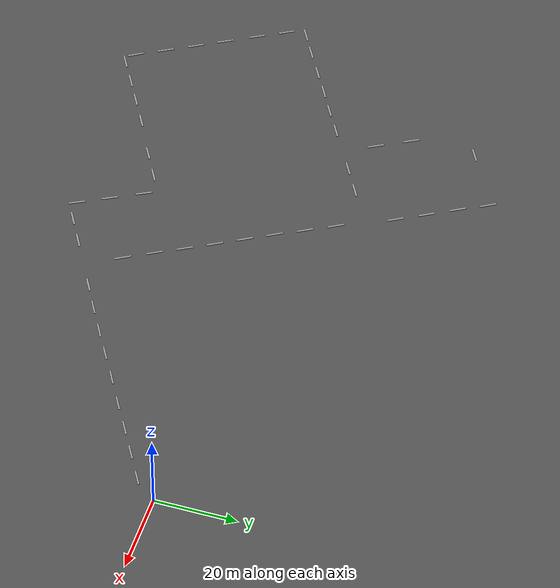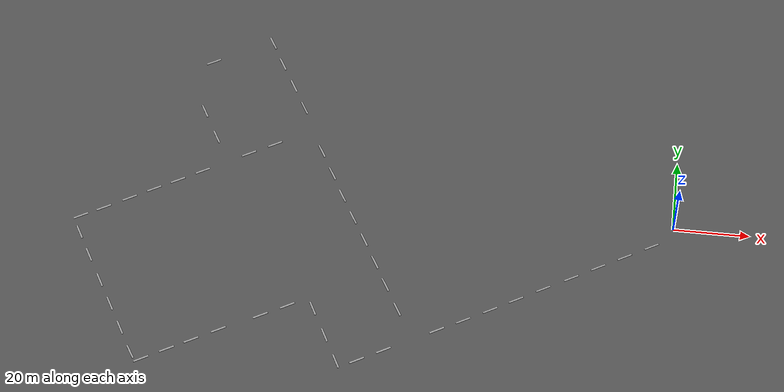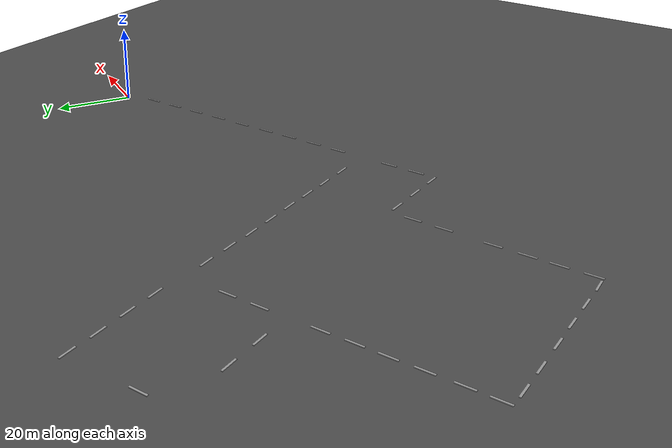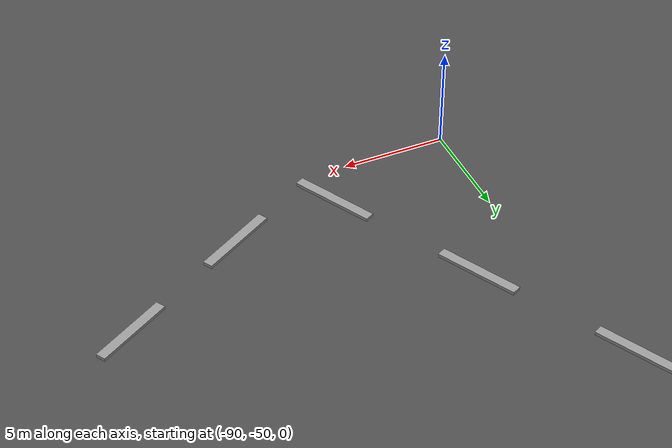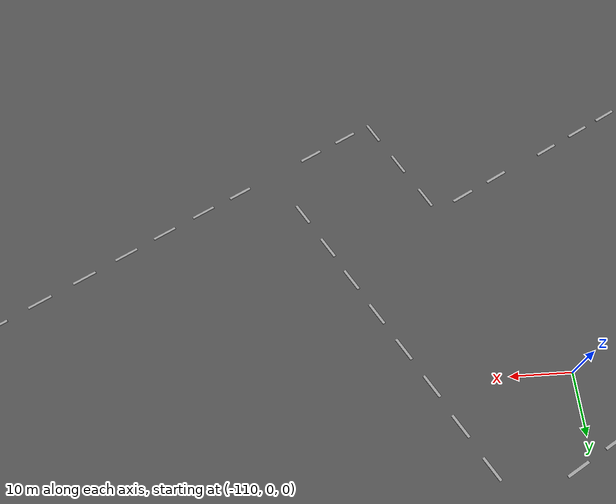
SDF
<sdf version="1.6">
 <world name="default">
  <light name="sun" type="directional">
   <pose>0 0 10 0 -0 0</pose>
   <diffuse>0.8 0.8 0.8 1</diffuse>
   <specular>0.2 0.2 0.2 1</specular>
   <attenuation>
    <range>1000</range>
    <constant>0.9</constant>
    <linear>0.01</linear>
    <quadratic>0.001</quadratic>
   </attenuation>
   <direction>-0.5 0.1 -0.9</direction>
  </light>
  <gravity>0 0 -9.8</gravity>
  <magnetic_field>6e-06 2.3e-05 -4.2e-05</magnetic_field>
  <atmosphere type="adiabatic"/>
  <physics name="default_physics" default="0" type="ode">
   <max_step_size>0.001</max_step_size>
   <real_time_factor>1</real_time_factor>
   <real_time_update_rate>1000</real_time_update_rate>
   <ode>
    <solver>
     <type>quick</type>
     <iters>100</iters>
     <sor>1.3</sor>
     <use_dynamic_moi_rescaling>0</use_dynamic_moi_rescaling>
    </solver>
    <constraints>
     <cfm>0</cfm>
     <erp>0.2</erp>
     <contact_max_correcting_vel>100</contact_max_correcting_vel>
     <contact_surface_layer>0.001</contact_surface_layer>
    </constraints>
   </ode>
  </physics>
  <scene><ambient>0.4 0.4 0.4 1</ambient><background>0.7 0.7 0.7 1</background><shadows>1</shadows></scene>
  <spherical_coordinates>
   <surface_model>EARTH_WGS84</surface_model>
   <latitude_deg>10.7755</latitude_deg>
   <longitude_deg>106.66</longitude_deg>
   <elevation>0.5</elevation>
   <heading_deg>90</heading_deg>
  </spherical_coordinates>
  <model name="asphalt_plane">
   <static>1</static>
   <link name="link">
    <collision name="collision"><geometry><box><size>300.002 399.998 0.1</size></box></geometry></collision>
    <visual name="visual">
     <cast_shadows>0</cast_shadows>
     <geometry><box><size>300.002 399.998 0.1</size></box></geometry>
     <material>
      <script>
       <uri>model://asphalt_plane/materials/scripts</uri>
       <uri>model://asphalt_plane/materials/textures</uri>
       <name>vrc/asphalt</name>
      </script>
     </material>
    </visual>
   </link>
   <pose>-96.2896 -6.77904 0 0 -0 0.505117</pose>
  </model>
  <model name="unit_box">
   <pose>-58.6797 -36.3177 0.134718 0 -2e-06 0.511104</pose>
   <link name="link">
    <inertial>
     <mass>1</mass>
     <inertia>
      <ixx>0.166667</ixx>
      <ixy>0</ixy>
      <ixz>0</ixz>
      <iyy>0.166667</iyy>
      <iyz>0</iyz>
      <izz>0.166667</izz>
     </inertia>
    </inertial>
    <collision name="collision"><geometry><box><size>4.10992 0.470748 0.169445</size></box></geometry></collision>
    <visual name="visual">
     <geometry><box><size>4.10992 0.470748 0.169445</size></box></geometry>
     <material>
      <script><name>Gazebo/Grey</name><uri>file://media/materials/scripts/gazebo.material</uri></script>
     </material>
    </visual>
   </link>
  </model>
  <model name="unit_box_clone">
   <pose>-52.2343 -32.8004 0.134718 0 -2e-06 0.511119</pose>
   <link name="link">
    <inertial>
     <mass>1</mass>
     <inertia>
      <ixx>0.166667</ixx>
      <ixy>0</ixy>
      <ixz>0</ixz>
      <iyy>0.166667</iyy>
      <iyz>0</iyz>
      <izz>0.166667</izz>
     </inertia>
    </inertial>
    <collision name="collision"><geometry><box><size>4.10992 0.423623 0.169445</size></box></geometry></collision>
    <visual name="visual">
     <geometry><box><size>4.10992 0.423623 0.169445</size></box></geometry>
     <material>
      <script><name>Gazebo/Grey</name><uri>file://media/materials/scripts/gazebo.material</uri></script>
     </material>
    </visual>
   </link>
  </model>
  <model name="unit_box_clone_clone">
   <pose>-45.605 -29.0458 0.134718 0 -2e-06 0.511109</pose>
   <link name="link">
    <inertial>
     <mass>1</mass>
     <inertia>
      <ixx>0.166667</ixx>
      <ixy>0</ixy>
      <ixz>0</ixz>
      <iyy>0.166667</iyy>
      <iyz>0</iyz>
      <izz>0.166667</izz>
     </inertia>
    </inertial>
    <collision name="collision"><geometry><box><size>4.10992 0.423624 0.169445</size></box></geometry></collision>
    <visual name="visual">
     <geometry><box><size>4.10992 0.423624 0.169445</size></box></geometry>
     <material>
      <script><name>Gazebo/Grey</name><uri>file://media/materials/scripts/gazebo.material</uri></script>
     </material>
    </visual>
   </link>
  </model>
  <model name="unit_box_clone_clone_0">
   <pose>-39.235 -25.3333 0.134718 0 -2e-06 0.511111</pose>
   <link name="link">
    <inertial>
     <mass>1</mass>
     <inertia>
      <ixx>0.166667</ixx>
      <ixy>0</ixy>
      <ixz>0</ixz>
      <iyy>0.166667</iyy>
      <iyz>0</iyz>
      <izz>0.166667</izz>
     </inertia>
    </inertial>
    <collision name="collision"><geometry><box><size>4.10992 0.423624 0.169445</size></box></geometry></collision>
    <visual name="visual">
     <geometry><box><size>4.10992 0.423624 0.169445</size></box></geometry>
     <material>
      <script><name>Gazebo/Grey</name><uri>file://media/materials/scripts/gazebo.material</uri></script>
     </material>
    </visual>
   </link>
  </model>
  <model name="unit_box_clone_clone_1">
   <pose>-32.4914 -21.3832 0.134718 -0 -2e-06 0.511112</pose>
   <link name="link">
    <inertial>
     <mass>1</mass>
     <inertia>
      <ixx>0.166667</ixx>
      <ixy>0</ixy>
      <ixz>0</ixz>
      <iyy>0.166667</iyy>
      <iyz>0</iyz>
      <izz>0.166667</izz>
     </inertia>
    </inertial>
    <collision name="collision"><geometry><box><size>4.10992 0.423624 0.169445</size></box></geometry></collision>
    <visual name="visual">
     <geometry><box><size>4.10992 0.423624 0.169445</size></box></geometry>
     <material>
      <script><name>Gazebo/Grey</name><uri>file://media/materials/scripts/gazebo.material</uri></script>
     </material>
    </visual>
   </link>
  </model>
  <model name="unit_box_clone_clone_2">
   <pose>-25.515 -17.4445 0.134718 0 -2e-06 0.511114</pose>
   <link name="link">
    <inertial>
     <mass>1</mass>
     <inertia>
      <ixx>0.166667</ixx>
      <ixy>0</ixy>
      <ixz>0</ixz>
      <iyy>0.166667</iyy>
      <iyz>0</iyz>
      <izz>0.166667</izz>
     </inertia>
    </inertial>
    <collision name="collision"><geometry><box><size>4.10992 0.423624 0.169445</size></box></geometry></collision>
    <visual name="visual">
     <geometry><box><size>4.10992 0.423624 0.169445</size></box></geometry>
     <material>
      <script><name>Gazebo/Grey</name><uri>file://media/materials/scripts/gazebo.material</uri></script>
     </material>
    </visual>
   </link>
  </model>
  <model name="unit_box_clone_clone_3">
   <pose>-18.7815 -13.4968 0.134718 -0 -2e-06 0.511115</pose>
   <link name="link">
    <inertial>
     <mass>1</mass>
     <inertia>
      <ixx>0.166667</ixx>
      <ixy>0</ixy>
      <ixz>0</ixz>
      <iyy>0.166667</iyy>
      <iyz>0</iyz>
      <izz>0.166667</izz>
     </inertia>
    </inertial>
    <collision name="collision"><geometry><box><size>4.10992 0.423624 0.169445</size></box></geometry></collision>
    <visual name="visual">
     <geometry><box><size>4.10992 0.423624 0.169445</size></box></geometry>
     <material>
      <script><name>Gazebo/Grey</name><uri>file://media/materials/scripts/gazebo.material</uri></script>
     </material>
    </visual>
   </link>
  </model>
  <model name="unit_box_clone_clone_4">
   <pose>-12.1267 -9.70208 0.134718 -0 -2e-06 0.511117</pose>
   <link name="link">
    <inertial>
     <mass>1</mass>
     <inertia>
      <ixx>0.166667</ixx>
      <ixy>0</ixy>
      <ixz>0</ixz>
      <iyy>0.166667</iyy>
      <iyz>0</iyz>
      <izz>0.166667</izz>
     </inertia>
    </inertial>
    <collision name="collision"><geometry><box><size>4.10992 0.423624 0.169445</size></box></geometry></collision>
    <visual name="visual">
     <geometry><box><size>4.10992 0.423624 0.169445</size></box></geometry>
     <material>
      <script><name>Gazebo/Grey</name><uri>file://media/materials/scripts/gazebo.material</uri></script>
     </material>
    </visual>
   </link>
  </model>
  <model name="unit_box_clone_clone_5">
   <pose>-5.35605 -5.84935 0.134718 -0 -2e-06 0.511118</pose>
   <link name="link">
    <inertial>
     <mass>1</mass>
     <inertia>
      <ixx>0.166667</ixx>
      <ixy>0</ixy>
      <ixz>0</ixz>
      <iyy>0.166667</iyy>
      <iyz>0</iyz>
      <izz>0.166667</izz>
     </inertia>
    </inertial>
    <collision name="collision"><geometry><box><size>4.10992 0.423624 0.169445</size></box></geometry></collision>
    <visual name="visual">
     <geometry><box><size>4.10992 0.423624 0.169445</size></box></geometry>
     <material>
      <script><name>Gazebo/Grey</name><uri>file://media/materials/scripts/gazebo.material</uri></script>
     </material>
    </visual>
   </link>
  </model>
  <model name="unit_box_clone_0">
   <pose>-71.6412 -43.4656 0.134718 0 -2e-06 0.511099</pose>
   <link name="link">
    <inertial>
     <mass>1</mass>
     <inertia>
      <ixx>0.166667</ixx>
      <ixy>0</ixy>
      <ixz>0</ixz>
      <iyy>0.166667</iyy>
      <iyz>0</iyz>
      <izz>0.166667</izz>
     </inertia>
    </inertial>
    <collision name="collision"><geometry><box><size>4.10992 0.470749 0.169445</size></box></geometry></collision>
    <visual name="visual">
     <geometry><box><size>4.10992 0.470749 0.169445</size></box></geometry>
     <material>
      <script><name>Gazebo/Grey</name><uri>file://media/materials/scripts/gazebo.material</uri></script>
     </material>
    </visual>
   </link>
  </model>
  <model name="unit_box_clone_1">
   <pose>-78.1131 -47.0767 0.134718 0 -2e-06 0.511101</pose>
   <link name="link">
    <inertial>
     <mass>1</mass>
     <inertia>
      <ixx>0.166667</ixx>
      <ixy>0</ixy>
      <ixz>0</ixz>
      <iyy>0.166667</iyy>
      <iyz>0</iyz>
      <izz>0.166667</izz>
     </inertia>
    </inertial>
    <collision name="collision"><geometry><box><size>4.10992 0.470749 0.169445</size></box></geometry></collision>
    <visual name="visual">
     <geometry><box><size>4.10992 0.470749 0.169445</size></box></geometry>
     <material>
      <script><name>Gazebo/Grey</name><uri>file://media/materials/scripts/gazebo.material</uri></script>
     </material>
    </visual>
   </link>
  </model>
  <model name="unit_box_clone_1_clone">
   <pose>-83.4388 -47.8919 0.134718 0 2e-06 2.05266</pose>
   <link name="link">
    <inertial>
     <mass>1</mass>
     <inertia>
      <ixx>0.166667</ixx>
      <ixy>0</ixy>
      <ixz>0</ixz>
      <iyy>0.166667</iyy>
      <iyz>0</iyz>
      <izz>0.166667</izz>
     </inertia>
    </inertial>
    <collision name="collision"><geometry><box><size>4.10992 0.470749 0.169445</size></box></geometry></collision>
    <visual name="visual">
     <geometry><box><size>4.10992 0.470749 0.169445</size></box></geometry>
     <material>
      <script><name>Gazebo/Grey</name><uri>file://media/materials/scripts/gazebo.material</uri></script>
     </material>
    </visual>
   </link>
  </model>
  <model name="unit_box_clone_1_clone_clone">
   <pose>-87.2547 -40.7782 0.134718 0 2e-06 2.05266</pose>
   <link name="link">
    <inertial>
     <mass>1</mass>
     <inertia>
      <ixx>0.166667</ixx>
      <ixy>0</ixy>
      <ixz>0</ixz>
      <iyy>0.166667</iyy>
      <iyz>0</iyz>
      <izz>0.166667</izz>
     </inertia>
    </inertial>
    <collision name="collision"><geometry><box><size>4.10992 0.470749 0.169445</size></box></geometry></collision>
    <visual name="visual">
     <geometry><box><size>4.10992 0.470749 0.169445</size></box></geometry>
     <material>
      <script><name>Gazebo/Grey</name><uri>file://media/materials/scripts/gazebo.material</uri></script>
     </material>
    </visual>
   </link>
  </model>
  <model name="unit_box_clone_1_clone_clone_0">
   <pose>-91.1866 -33.4937 0.134718 0 2e-06 2.05267</pose>
   <link name="link">
    <inertial>
     <mass>1</mass>
     <inertia>
      <ixx>0.166667</ixx>
      <ixy>0</ixy>
      <ixz>0</ixz>
      <iyy>0.166667</iyy>
      <iyz>0</iyz>
      <izz>0.166667</izz>
     </inertia>
    </inertial>
    <collision name="collision"><geometry><box><size>4.10992 0.470749 0.169445</size></box></geometry></collision>
    <visual name="visual">
     <geometry><box><size>4.10992 0.470749 0.169445</size></box></geometry>
     <material>
      <script><name>Gazebo/Grey</name><uri>file://media/materials/scripts/gazebo.material</uri></script>
     </material>
    </visual>
   </link>
  </model>
  <model name="unit_box_clone_1_clone_0">
   <pose>-97.8327 -33.3433 0.134718 0 -2e-06 0.511101</pose>
   <link name="link">
    <inertial>
     <mass>1</mass>
     <inertia>
      <ixx>0.166667</ixx>
      <ixy>0</ixy>
      <ixz>0</ixz>
      <iyy>0.166667</iyy>
      <iyz>0</iyz>
      <izz>0.166667</izz>
     </inertia>
    </inertial>
    <collision name="collision"><geometry><box><size>4.10992 0.470749 0.169445</size></box></geometry></collision>
    <visual name="visual">
     <geometry><box><size>4.10992 0.470749 0.169445</size></box></geometry>
     <material>
      <script><name>Gazebo/Grey</name><uri>file://media/materials/scripts/gazebo.material</uri></script>
     </material>
    </visual>
   </link>
  </model>
  <model name="unit_box_clone_1_clone_1">
   <pose>-104.358 -36.9164 0.134718 0 -2e-06 0.511103</pose>
   <link name="link">
    <inertial>
     <mass>1</mass>
     <inertia>
      <ixx>0.166667</ixx>
      <ixy>0</ixy>
      <ixz>0</ixz>
      <iyy>0.166667</iyy>
      <iyz>0</iyz>
      <izz>0.166667</izz>
     </inertia>
    </inertial>
    <collision name="collision"><geometry><box><size>4.10992 0.470749 0.169445</size></box></geometry></collision>
    <visual name="visual">
     <geometry><box><size>4.10992 0.470749 0.169445</size></box></geometry>
     <material>
      <script><name>Gazebo/Grey</name><uri>file://media/materials/scripts/gazebo.material</uri></script>
     </material>
    </visual>
   </link>
  </model>
  <model name="unit_box_clone_1_clone_1_clone">
   <pose>-114.497 -42.1521 0.134718 0 -2e-06 0.511103</pose>
   <link name="link">
    <inertial>
     <mass>1</mass>
     <inertia>
      <ixx>0.166667</ixx>
      <ixy>0</ixy>
      <ixz>0</ixz>
      <iyy>0.166667</iyy>
      <iyz>0</iyz>
      <izz>0.166667</izz>
     </inertia>
    </inertial>
    <collision name="collision"><geometry><box><size>4.10992 0.470749 0.169445</size></box></geometry></collision>
    <visual name="visual">
     <geometry><box><size>4.10992 0.470749 0.169445</size></box></geometry>
     <material>
      <script><name>Gazebo/Grey</name><uri>file://media/materials/scripts/gazebo.material</uri></script>
     </material>
    </visual>
   </link>
  </model>
  <model name="unit_box_clone_1_clone_1_clone_0">
   <pose>-121.043 -45.8424 0.134718 -0 -2e-06 0.511106</pose>
   <link name="link">
    <inertial>
     <mass>1</mass>
     <inertia>
      <ixx>0.166667</ixx>
      <ixy>0</ixy>
      <ixz>0</ixz>
      <iyy>0.166667</iyy>
      <iyz>0</iyz>
      <izz>0.166667</izz>
     </inertia>
    </inertial>
    <collision name="collision"><geometry><box><size>4.10992 0.470749 0.169445</size></box></geometry></collision>
    <visual name="visual">
     <geometry><box><size>4.10992 0.470749 0.169445</size></box></geometry>
     <material>
      <script><name>Gazebo/Grey</name><uri>file://media/materials/scripts/gazebo.material</uri></script>
     </material>
    </visual>
   </link>
  </model>
  <model name="unit_box_clone_1_clone_1_clone_1">
   <pose>-126.85 -49.0943 0.134718 -0 -2e-06 0.511107</pose>
   <link name="link">
    <inertial>
     <mass>1</mass>
     <inertia>
      <ixx>0.166667</ixx>
      <ixy>0</ixy>
      <ixz>0</ixz>
      <iyy>0.166667</iyy>
      <iyz>0</iyz>
      <izz>0.166667</izz>
     </inertia>
    </inertial>
    <collision name="collision"><geometry><box><size>4.10992 0.470749 0.169445</size></box></geometry></collision>
    <visual name="visual">
     <geometry><box><size>4.10992 0.470749 0.169445</size></box></geometry>
     <material>
      <script><name>Gazebo/Grey</name><uri>file://media/materials/scripts/gazebo.material</uri></script>
     </material>
    </visual>
   </link>
  </model>
  <model name="unit_box_clone_1_clone_clone_1">
   <pose>-155.018 -17.5805 0.134718 -0 2e-06 2.08646</pose>
   <link name="link">
    <inertial>
     <mass>1</mass>
     <inertia>
      <ixx>0.166667</ixx>
      <ixy>0</ixy>
      <ixz>0</ixz>
      <iyy>0.166667</iyy>
      <iyz>0</iyz>
      <izz>0.166667</izz>
     </inertia>
    </inertial>
    <collision name="collision"><geometry><box><size>4.10992 0.470749 0.169445</size></box></geometry></collision>
    <visual name="visual">
     <geometry><box><size>4.10992 0.470749 0.169445</size></box></geometry>
     <material>
      <script><name>Gazebo/Grey</name><uri>file://media/materials/scripts/gazebo.material</uri></script>
     </material>
    </visual>
   </link>
  </model>
  <model name="unit_box_clone_1_clone_clone_2">
   <pose>-151.376 -24.0659 0.134718 -0 2e-06 2.08813</pose>
   <link name="link">
    <inertial>
     <mass>1</mass>
     <inertia>
      <ixx>0.166667</ixx>
      <ixy>0</ixy>
      <ixz>0</ixz>
      <iyy>0.166667</iyy>
      <iyz>0</iyz>
      <izz>0.166667</izz>
     </inertia>
    </inertial>
    <collision name="collision"><geometry><box><size>4.10992 0.470749 0.169445</size></box></geometry></collision>
    <visual name="visual">
     <geometry><box><size>4.10992 0.470749 0.169445</size></box></geometry>
     <material>
      <script><name>Gazebo/Grey</name><uri>file://media/materials/scripts/gazebo.material</uri></script>
     </material>
    </visual>
   </link>
  </model>
  <model name="unit_box_clone_1_clone_clone_1_clone_0">
   <pose>-143.528 -37.7174 0.134718 -0 2e-06 2.08646</pose>
   <link name="link">
    <inertial>
     <mass>1</mass>
     <inertia>
      <ixx>0.166667</ixx>
      <ixy>0</ixy>
      <ixz>0</ixz>
      <iyy>0.166667</iyy>
      <iyz>0</iyz>
      <izz>0.166667</izz>
     </inertia>
    </inertial>
    <collision name="collision"><geometry><box><size>4.10992 0.470749 0.169445</size></box></geometry></collision>
    <visual name="visual">
     <geometry><box><size>4.10992 0.470749 0.169445</size></box></geometry>
     <material>
      <script><name>Gazebo/Grey</name><uri>file://media/materials/scripts/gazebo.material</uri></script>
     </material>
    </visual>
   </link>
  </model>
  <model name="unit_box_clone_1_clone_clone_1_clone_1">
   <pose>-139.771 -44.3299 0.134718 -0 2e-06 2.08646</pose>
   <link name="link">
    <inertial>
     <mass>1</mass>
     <inertia>
      <ixx>0.166667</ixx>
      <ixy>0</ixy>
      <ixz>0</ixz>
      <iyy>0.166667</iyy>
      <iyz>0</iyz>
      <izz>0.166667</izz>
     </inertia>
    </inertial>
    <collision name="collision"><geometry><box><size>4.10992 0.470749 0.169445</size></box></geometry></collision>
    <visual name="visual">
     <geometry><box><size>4.10992 0.470749 0.169445</size></box></geometry>
     <material>
      <script><name>Gazebo/Grey</name><uri>file://media/materials/scripts/gazebo.material</uri></script>
     </material>
    </visual>
   </link>
  </model>
  <model name="unit_box_clone_1_clone_clone_1_clone_2">
   <pose>-136.03 -50.9037 0.134717 -0 -2e-06 2.12666</pose>
   <link name="link">
    <inertial>
     <mass>1</mass>
     <inertia>
      <ixx>0.166667</ixx>
      <ixy>0</ixy>
      <ixz>0</ixz>
      <iyy>0.166667</iyy>
      <iyz>0</iyz>
      <izz>0.166667</izz>
     </inertia>
    </inertial>
    <collision name="collision"><geometry><box><size>4.10992 0.470749 0.169445</size></box></geometry></collision>
    <visual name="visual">
     <geometry><box><size>4.10992 0.470749 0.169445</size></box></geometry>
     <material>
      <script><name>Gazebo/Grey</name><uri>file://media/materials/scripts/gazebo.material</uri></script>
     </material>
    </visual>
   </link>
  </model>
  <model name="unit_box_clone_1_clone_1_clone_1_clone">
   <pose>-132.933 -52.5797 0.134718 -0 -2e-06 0.511106</pose>
   <link name="link">
    <inertial>
     <mass>1</mass>
     <inertia>
      <ixx>0.166667</ixx>
      <ixy>0</ixy>
      <ixz>0</ixz>
      <iyy>0.166667</iyy>
      <iyz>0</iyz>
      <izz>0.166667</izz>
     </inertia>
    </inertial>
    <collision name="collision"><geometry><box><size>4.10992 0.470749 0.169445</size></box></geometry></collision>
    <visual name="visual">
     <geometry><box><size>4.10992 0.470749 0.169445</size></box></geometry>
     <material>
      <script><name>Gazebo/Grey</name><uri>file://media/materials/scripts/gazebo.material</uri></script>
     </material>
    </visual>
   </link>
  </model>
  <model name="unit_box_clone_1_clone_1_clone_0_clone">
   <pose>-137.636 -2.42595 0.134718 -0 -2e-06 0.511108</pose>
   <link name="link">
    <inertial>
     <mass>1</mass>
     <inertia>
      <ixx>0.166667</ixx>
      <ixy>0</ixy>
      <ixz>0</ixz>
      <iyy>0.166667</iyy>
      <iyz>0</iyz>
      <izz>0.166667</izz>
     </inertia>
    </inertial>
    <collision name="collision"><geometry><box><size>4.10992 0.470749 0.169445</size></box></geometry></collision>
    <visual name="visual">
     <geometry><box><size>4.10992 0.470749 0.169445</size></box></geometry>
     <material>
      <script><name>Gazebo/Grey</name><uri>file://media/materials/scripts/gazebo.material</uri></script>
     </material>
    </visual>
   </link>
  </model>
  <model name="unit_box_clone_1_clone_1_clone_0_clone_0">
   <pose>-143.643 -5.91854 0.134718 0 -2e-06 0.511109</pose>
   <link name="link">
    <inertial>
     <mass>1</mass>
     <inertia>
      <ixx>0.166667</ixx>
      <ixy>0</ixy>
      <ixz>0</ixz>
      <iyy>0.166667</iyy>
      <iyz>0</iyz>
      <izz>0.166667</izz>
     </inertia>
    </inertial>
    <collision name="collision"><geometry><box><size>4.10992 0.470749 0.169445</size></box></geometry></collision>
    <visual name="visual">
     <geometry><box><size>4.10992 0.470749 0.169445</size></box></geometry>
     <material>
      <script><name>Gazebo/Grey</name><uri>file://media/materials/scripts/gazebo.material</uri></script>
     </material>
    </visual>
   </link>
  </model>
  <model name="unit_box_clone_1_clone_1_clone_0_clone_1">
   <pose>-149.954 -9.56586 0.134718 0 -2e-06 0.511111</pose>
   <link name="link">
    <inertial>
     <mass>1</mass>
     <inertia>
      <ixx>0.166667</ixx>
      <ixy>0</ixy>
      <ixz>0</ixz>
      <iyy>0.166667</iyy>
      <iyz>0</iyz>
      <izz>0.166667</izz>
     </inertia>
    </inertial>
    <collision name="collision"><geometry><box><size>4.10992 0.470749 0.169445</size></box></geometry></collision>
    <visual name="visual">
     <geometry><box><size>4.10992 0.470749 0.169445</size></box></geometry>
     <material>
      <script><name>Gazebo/Grey</name><uri>file://media/materials/scripts/gazebo.material</uri></script>
     </material>
    </visual>
   </link>
  </model>
  <model name="unit_box_clone_1_clone_1_clone_0_clone_clone">
   <pose>-131.788 0.844974 0.134718 -0 -2e-06 0.511107</pose>
   <link name="link">
    <inertial>
     <mass>1</mass>
     <inertia>
      <ixx>0.166667</ixx>
      <ixy>0</ixy>
      <ixz>0</ixz>
      <iyy>0.166667</iyy>
      <iyz>0</iyz>
      <izz>0.166667</izz>
     </inertia>
    </inertial>
    <collision name="collision"><geometry><box><size>4.10992 0.470749 0.169445</size></box></geometry></collision>
    <visual name="visual">
     <geometry><box><size>4.10992 0.470749 0.169445</size></box></geometry>
     <material>
      <script><name>Gazebo/Grey</name><uri>file://media/materials/scripts/gazebo.material</uri></script>
     </material>
    </visual>
   </link>
  </model>
  <model name="unit_box_clone_1_clone_1_clone_0_clone_clone_0">
   <pose>-125.667 4.39816 0.134718 0 -2e-06 0.511109</pose>
   <link name="link">
    <inertial>
     <mass>1</mass>
     <inertia>
      <ixx>0.166667</ixx>
      <ixy>0</ixy>
      <ixz>0</ixz>
      <iyy>0.166667</iyy>
      <iyz>0</iyz>
      <izz>0.166667</izz>
     </inertia>
    </inertial>
    <collision name="collision"><geometry><box><size>4.10992 0.470749 0.169445</size></box></geometry></collision>
    <visual name="visual">
     <geometry><box><size>4.10992 0.470749 0.169445</size></box></geometry>
     <material>
      <script><name>Gazebo/Grey</name><uri>file://media/materials/scripts/gazebo.material</uri></script>
     </material>
    </visual>
   </link>
  </model>
  <model name="unit_box_clone_1_clone_clone_1_clone_3">
   <pose>-123.556 15.3326 0.134718 -0 2e-06 2.08645</pose>
   <link name="link">
    <inertial>
     <mass>1</mass>
     <inertia>
      <ixx>0.166667</ixx>
      <ixy>0</ixy>
      <ixz>0</ixz>
      <iyy>0.166667</iyy>
      <iyz>0</iyz>
      <izz>0.166667</izz>
     </inertia>
    </inertial>
    <collision name="collision"><geometry><box><size>4.10992 0.470749 0.169445</size></box></geometry></collision>
    <visual name="visual">
     <geometry><box><size>4.10992 0.470749 0.169445</size></box></geometry>
     <material>
      <script><name>Gazebo/Grey</name><uri>file://media/materials/scripts/gazebo.material</uri></script>
     </material>
    </visual>
   </link>
  </model>
  <model name="unit_box_clone_1_clone_clone_1_clone_4">
   <pose>-127.878 23.0941 0.134718 -0 2e-06 2.08645</pose>
   <link name="link">
    <inertial>
     <mass>1</mass>
     <inertia>
      <ixx>0.166667</ixx>
      <ixy>0</ixy>
      <ixz>0</ixz>
      <iyy>0.166667</iyy>
      <iyz>0</iyz>
      <izz>0.166667</izz>
     </inertia>
    </inertial>
    <collision name="collision"><geometry><box><size>4.10992 0.470749 0.169445</size></box></geometry></collision>
    <visual name="visual">
     <geometry><box><size>4.10992 0.470749 0.169445</size></box></geometry>
     <material>
      <script><name>Gazebo/Grey</name><uri>file://media/materials/scripts/gazebo.material</uri></script>
     </material>
    </visual>
   </link>
  </model>
  <model name="unit_box_clone_1_clone_1_clone_0_clone_clone_0_clone">
   <pose>-114.159 11.0701 0.134718 0 -2e-06 0.511109</pose>
   <link name="link">
    <inertial>
     <mass>1</mass>
     <inertia>
      <ixx>0.166667</ixx>
      <ixy>0</ixy>
      <ixz>0</ixz>
      <iyy>0.166667</iyy>
      <iyz>0</iyz>
      <izz>0.166667</izz>
     </inertia>
    </inertial>
    <collision name="collision"><geometry><box><size>4.10992 0.470749 0.169445</size></box></geometry></collision>
    <visual name="visual">
     <geometry><box><size>4.10992 0.470749 0.169445</size></box></geometry>
     <material>
      <script><name>Gazebo/Grey</name><uri>file://media/materials/scripts/gazebo.material</uri></script>
     </material>
    </visual>
   </link>
  </model>
  <model name="unit_box_clone_1_clone_1_clone_0_clone_clone_0_clone_0">
   <pose>-107.629 14.7469 0.134718 0 -2e-06 0.511111</pose>
   <link name="link">
    <inertial>
     <mass>1</mass>
     <inertia>
      <ixx>0.166667</ixx>
      <ixy>0</ixy>
      <ixz>0</ixz>
      <iyy>0.166667</iyy>
      <iyz>0</iyz>
      <izz>0.166667</izz>
     </inertia>
    </inertial>
    <collision name="collision"><geometry><box><size>4.10992 0.470749 0.169445</size></box></geometry></collision>
    <visual name="visual">
     <geometry><box><size>4.10992 0.470749 0.169445</size></box></geometry>
     <material>
      <script><name>Gazebo/Grey</name><uri>file://media/materials/scripts/gazebo.material</uri></script>
     </material>
    </visual>
   </link>
  </model>
  <model name="unit_box_clone_1_clone_1_clone_0_clone_clone_0_clone_clone">
   <pose>-127.827 39.0863 0.134718 0 -2e-06 0.51111</pose>
   <link name="link">
    <inertial>
     <mass>1</mass>
     <inertia>
      <ixx>0.166667</ixx>
      <ixy>0</ixy>
      <ixz>0</ixz>
      <iyy>0.166667</iyy>
      <iyz>0</iyz>
      <izz>0.166667</izz>
     </inertia>
    </inertial>
    <collision name="collision"><geometry><box><size>4.10992 0.470749 0.169445</size></box></geometry></collision>
    <visual name="visual">
     <geometry><box><size>4.10992 0.470749 0.169445</size></box></geometry>
     <material>
      <script><name>Gazebo/Grey</name><uri>file://media/materials/scripts/gazebo.material</uri></script>
     </material>
    </visual>
   </link>
  </model>
  <model name="unit_box_clone_1_clone_clone_1_clone_3_clone_1">
   <pose>-112.548 46.8836 0.134718 -1e-06 2e-06 2.10379</pose>
   <link name="link">
    <inertial>
     <mass>1</mass>
     <inertia>
      <ixx>0.166667</ixx>
      <ixy>0</ixy>
      <ixz>0</ixz>
      <iyy>0.166667</iyy>
      <iyz>0</iyz>
      <izz>0.166667</izz>
     </inertia>
    </inertial>
    <collision name="collision"><geometry><box><size>4.10992 0.470749 0.169445</size></box></geometry></collision>
    <visual name="visual">
     <geometry><box><size>4.10992 0.470749 0.169445</size></box></geometry>
     <material>
      <script><name>Gazebo/Grey</name><uri>file://media/materials/scripts/gazebo.material</uri></script>
     </material>
    </visual>
   </link>
  </model>
  <model name="unit_box_clone_1_clone_clone_1_clone_3_clone_1_clone">
   <pose>-108.996 40.3715 0.134718 -1e-06 2e-06 2.10379</pose>
   <link name="link">
    <inertial>
     <mass>1</mass>
     <inertia>
      <ixx>0.166667</ixx>
      <ixy>0</ixy>
      <ixz>0</ixz>
      <iyy>0.166667</iyy>
      <iyz>0</iyz>
      <izz>0.166667</izz>
     </inertia>
    </inertial>
    <collision name="collision"><geometry><box><size>4.10992 0.470749 0.169445</size></box></geometry></collision>
    <visual name="visual">
     <geometry><box><size>4.10992 0.470749 0.169445</size></box></geometry>
     <material>
      <script><name>Gazebo/Grey</name><uri>file://media/materials/scripts/gazebo.material</uri></script>
     </material>
    </visual>
   </link>
  </model>
  <model name="unit_box_clone_1_clone_clone_1_clone_3_clone_1_clone_0">
   <pose>-105.082 33.6606 0.134718 -1e-06 2e-06 2.10379</pose>
   <link name="link">
    <inertial>
     <mass>1</mass>
     <inertia>
      <ixx>0.166667</ixx>
      <ixy>0</ixy>
      <ixz>0</ixz>
      <iyy>0.166667</iyy>
      <iyz>0</iyz>
      <izz>0.166667</izz>
     </inertia>
    </inertial>
    <collision name="collision"><geometry><box><size>4.10992 0.470749 0.169445</size></box></geometry></collision>
    <visual name="visual">
     <geometry><box><size>4.10992 0.470749 0.169445</size></box></geometry>
     <material>
      <script><name>Gazebo/Grey</name><uri>file://media/materials/scripts/gazebo.material</uri></script>
     </material>
    </visual>
   </link>
  </model>
  <model name="unit_box_clone_1_clone_clone_1_clone_3_clone_1_clone_1">
   <pose>-101.301 27.0073 0.134718 -1e-06 2e-06 2.10379</pose>
   <link name="link">
    <inertial>
     <mass>1</mass>
     <inertia>
      <ixx>0.166667</ixx>
      <ixy>0</ixy>
      <ixz>0</ixz>
      <iyy>0.166667</iyy>
      <iyz>0</iyz>
      <izz>0.166667</izz>
     </inertia>
    </inertial>
    <collision name="collision"><geometry><box><size>4.10992 0.470749 0.169445</size></box></geometry></collision>
    <visual name="visual">
     <geometry><box><size>4.10992 0.470749 0.169445</size></box></geometry>
     <material>
      <script><name>Gazebo/Grey</name><uri>file://media/materials/scripts/gazebo.material</uri></script>
     </material>
    </visual>
   </link>
  </model>
  <model name="unit_box_clone_1_clone_clone_1_clone_3_clone_1_clone_1_clone">
   <pose>-94.8723 13.932 0.134718 -1e-06 2e-06 2.1038</pose>
   <link name="link">
    <inertial>
     <mass>1</mass>
     <inertia>
      <ixx>0.166667</ixx>
      <ixy>0</ixy>
      <ixz>0</ixz>
      <iyy>0.166667</iyy>
      <iyz>0</iyz>
      <izz>0.166667</izz>
     </inertia>
    </inertial>
    <collision name="collision"><geometry><box><size>4.10992 0.470749 0.169445</size></box></geometry></collision>
    <visual name="visual">
     <geometry><box><size>4.10992 0.470749 0.169445</size></box></geometry>
     <material>
      <script><name>Gazebo/Grey</name><uri>file://media/materials/scripts/gazebo.material</uri></script>
     </material>
    </visual>
   </link>
  </model>
  <model name="unit_box_clone_1_clone_clone_1_clone_3_clone_1_clone_1_clone_0">
   <pose>-91.2227 7.30915 0.134718 -1e-06 2e-06 2.1038</pose>
   <link name="link">
    <inertial>
     <mass>1</mass>
     <inertia>
      <ixx>0.166667</ixx>
      <ixy>0</ixy>
      <ixz>0</ixz>
      <iyy>0.166667</iyy>
      <iyz>0</iyz>
      <izz>0.166667</izz>
     </inertia>
    </inertial>
    <collision name="collision"><geometry><box><size>4.10992 0.470749 0.169445</size></box></geometry></collision>
    <visual name="visual">
     <geometry><box><size>4.10992 0.470749 0.169445</size></box></geometry>
     <material>
      <script><name>Gazebo/Grey</name><uri>file://media/materials/scripts/gazebo.material</uri></script>
     </material>
    </visual>
   </link>
  </model>
  <model name="unit_box_clone_1_clone_clone_1_clone_3_clone_1_clone_1_clone_1">
   <pose>-87.7146 0.781713 0.134718 -1e-06 2e-06 2.1038</pose>
   <link name="link">
    <inertial>
     <mass>1</mass>
     <inertia>
      <ixx>0.166667</ixx>
      <ixy>0</ixy>
      <ixz>0</ixz>
      <iyy>0.166667</iyy>
      <iyz>0</iyz>
      <izz>0.166667</izz>
     </inertia>
    </inertial>
    <collision name="collision"><geometry><box><size>4.10992 0.470749 0.169445</size></box></geometry></collision>
    <visual name="visual">
     <geometry><box><size>4.10992 0.470749 0.169445</size></box></geometry>
     <material>
      <script><name>Gazebo/Grey</name><uri>file://media/materials/scripts/gazebo.material</uri></script>
     </material>
    </visual>
   </link>
  </model>
  <model name="unit_box_clone_1_clone_clone_1_clone_3_clone_1_clone_1_clone_2">
   <pose>-84.0889 -5.5361 0.134718 -1e-06 2e-06 2.1038</pose>
   <link name="link">
    <inertial>
     <mass>1</mass>
     <inertia>
      <ixx>0.166667</ixx>
      <ixy>0</ixy>
      <ixz>0</ixz>
      <iyy>0.166667</iyy>
      <iyz>0</iyz>
      <izz>0.166667</izz>
     </inertia>
    </inertial>
    <collision name="collision"><geometry><box><size>4.10992 0.470749 0.169445</size></box></geometry></collision>
    <visual name="visual">
     <geometry><box><size>4.10992 0.470749 0.169445</size></box></geometry>
     <material>
      <script><name>Gazebo/Grey</name><uri>file://media/materials/scripts/gazebo.material</uri></script>
     </material>
    </visual>
   </link>
  </model>
  <model name="unit_box_clone_1_clone_clone_1_clone_3_clone_1_clone_1_clone_3">
   <pose>-80.415 -11.8754 0.134718 -1e-06 2e-06 2.1038</pose>
   <link name="link">
    <inertial>
     <mass>1</mass>
     <inertia>
      <ixx>0.166667</ixx>
      <ixy>0</ixy>
      <ixz>0</ixz>
      <iyy>0.166667</iyy>
      <iyz>0</iyz>
      <izz>0.166667</izz>
     </inertia>
    </inertial>
    <collision name="collision"><geometry><box><size>4.10992 0.470749 0.169445</size></box></geometry></collision>
    <visual name="visual">
     <geometry><box><size>4.10992 0.470749 0.169445</size></box></geometry>
     <material>
      <script><name>Gazebo/Grey</name><uri>file://media/materials/scripts/gazebo.material</uri></script>
     </material>
    </visual>
   </link>
  </model>
  <model name="unit_box_clone_1_clone_clone_1_clone_3_clone_1_clone_1_clone_4">
   <pose>-76.8399 -18.2667 0.134718 -1e-06 2e-06 2.1038</pose>
   <link name="link">
    <inertial>
     <mass>1</mass>
     <inertia>
      <ixx>0.166667</ixx>
      <ixy>0</ixy>
      <ixz>0</ixz>
      <iyy>0.166667</iyy>
      <iyz>0</iyz>
      <izz>0.166667</izz>
     </inertia>
    </inertial>
    <collision name="collision"><geometry><box><size>4.10992 0.470749 0.169445</size></box></geometry></collision>
    <visual name="visual">
     <geometry><box><size>4.10992 0.470749 0.169445</size></box></geometry>
     <material>
      <script><name>Gazebo/Grey</name><uri>file://media/materials/scripts/gazebo.material</uri></script>
     </material>
    </visual>
   </link>
  </model>
  <model name="unit_box_clone_1_clone_clone_1_clone_3_clone_1_clone_1_clone_4_clone">
   <pose>-73.3618 -24.5777 0.134718 -1e-06 2e-06 2.1038</pose>
   <link name="link">
    <inertial>
     <mass>1</mass>
     <inertia>
      <ixx>0.166667</ixx>
      <ixy>0</ixy>
      <ixz>0</ixz>
      <iyy>0.166667</iyy>
      <iyz>0</iyz>
      <izz>0.166667</izz>
     </inertia>
    </inertial>
    <collision name="collision"><geometry><box><size>4.10992 0.470749 0.169445</size></box></geometry></collision>
    <visual name="visual">
     <geometry><box><size>4.10992 0.470749 0.169445</size></box></geometry>
     <material>
      <script><name>Gazebo/Grey</name><uri>file://media/materials/scripts/gazebo.material</uri></script>
     </material>
    </visual>
   </link>
  </model>
  <model name="unit_box_clone_1_clone_clone_1_clone_3_clone_1_clone_1_clone_4_clone_clone">
   <pose>-69.5081 -31.3678 0.134718 -1e-06 2e-06 2.1038</pose>
   <link name="link">
    <inertial>
     <mass>1</mass>
     <inertia>
      <ixx>0.166667</ixx>
      <ixy>0</ixy>
      <ixz>0</ixz>
      <iyy>0.166667</iyy>
      <iyz>0</iyz>
      <izz>0.166667</izz>
     </inertia>
    </inertial>
    <collision name="collision"><geometry><box><size>4.10992 0.470749 0.169445</size></box></geometry></collision>
    <visual name="visual">
     <geometry><box><size>4.10992 0.470749 0.169445</size></box></geometry>
     <material>
      <script><name>Gazebo/Grey</name><uri>file://media/materials/scripts/gazebo.material</uri></script>
     </material>
    </visual>
   </link>
  </model>
  <model name="unit_box_clone_1_clone_clone_2_clone">
   <pose>-147.301 -31.1805 0.134718 -0 2e-06 2.08813</pose>
   <link name="link">
    <inertial>
     <mass>1</mass>
     <inertia>
      <ixx>0.166667</ixx>
      <ixy>0</ixy>
      <ixz>0</ixz>
      <iyy>0.166667</iyy>
      <iyz>0</iyz>
      <izz>0.166667</izz>
     </inertia>
    </inertial>
    <collision name="collision"><geometry><box><size>4.10992 0.470749 0.169445</size></box></geometry></collision>
    <visual name="visual">
     <geometry><box><size>4.10992 0.470749 0.169445</size></box></geometry>
     <material>
      <script><name>Gazebo/Grey</name><uri>file://media/materials/scripts/gazebo.material</uri></script>
     </material>
    </visual>
   </link>
  </model>
  <model name="unit_box_clone_1_clone_1_clone_0_clone_1_clone">
   <pose>-155.514 -12.6414 0.134718 -0 -2e-06 0.511112</pose>
   <link name="link">
    <inertial>
     <mass>1</mass>
     <inertia>
      <ixx>0.166667</ixx>
      <ixy>0</ixy>
      <ixz>0</ixz>
      <iyy>0.166667</iyy>
      <iyz>0</iyz>
      <izz>0.166667</izz>
     </inertia>
    </inertial>
    <collision name="collision"><geometry><box><size>4.10992 0.470749 0.169445</size></box></geometry></collision>
    <visual name="visual">
     <geometry><box><size>4.10992 0.470749 0.169445</size></box></geometry>
     <material>
      <script><name>Gazebo/Grey</name><uri>file://media/materials/scripts/gazebo.material</uri></script>
     </material>
    </visual>
   </link>
  </model>
 </world>
</sdf>
